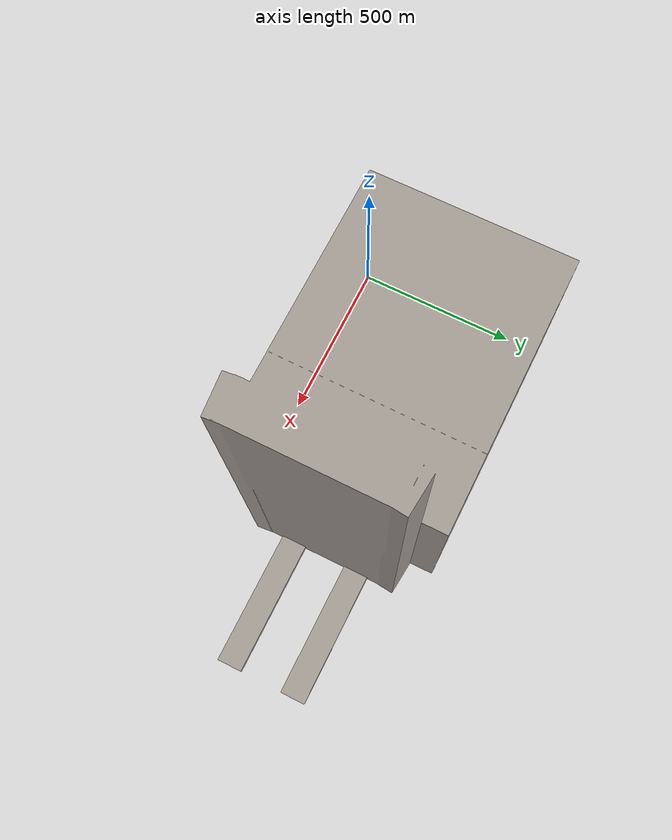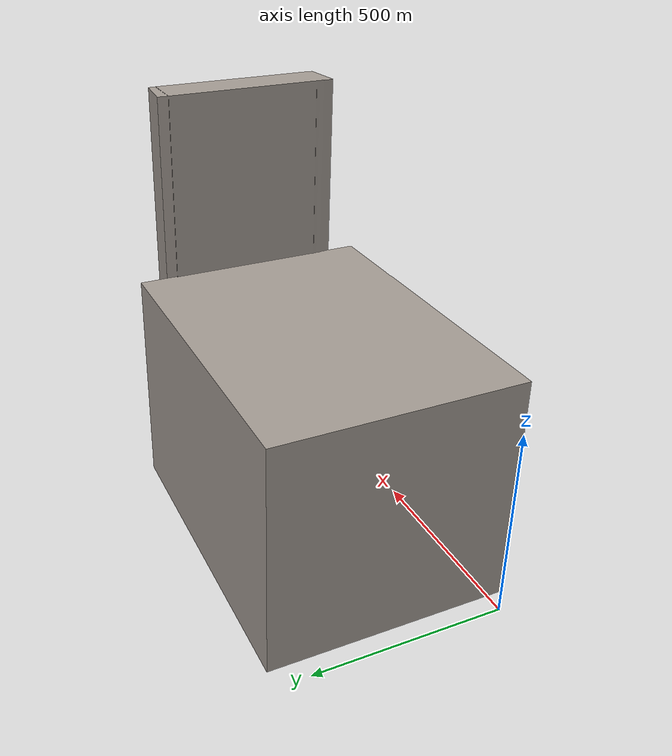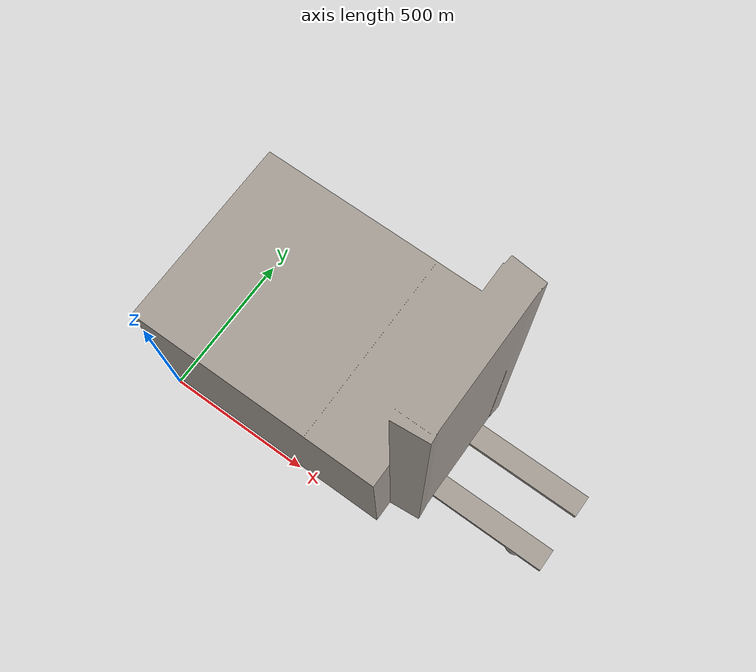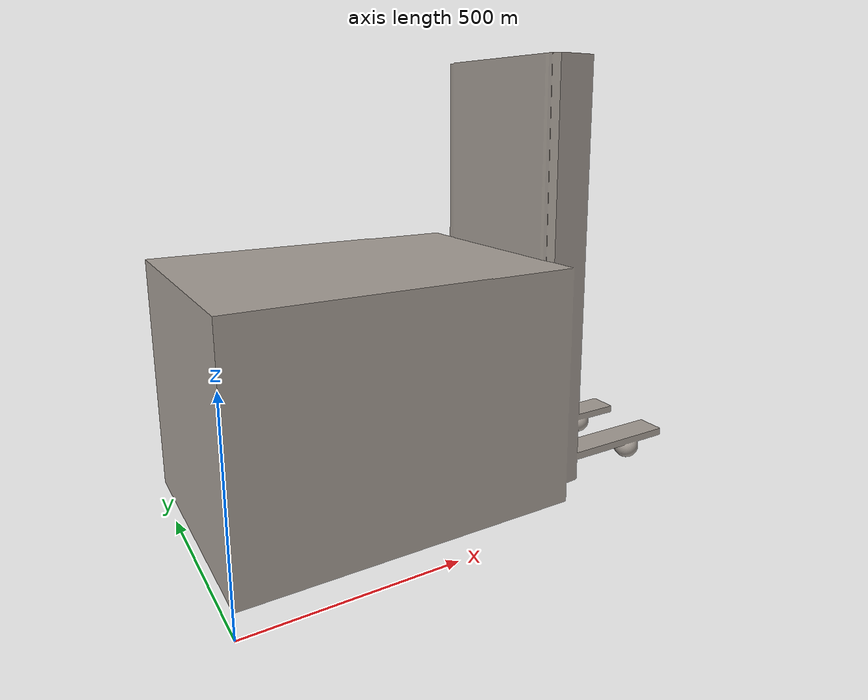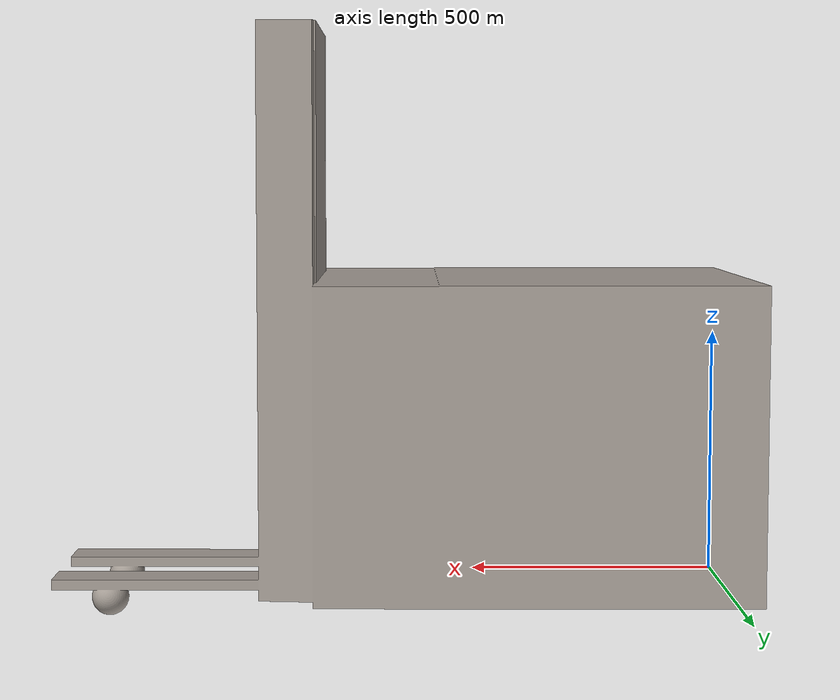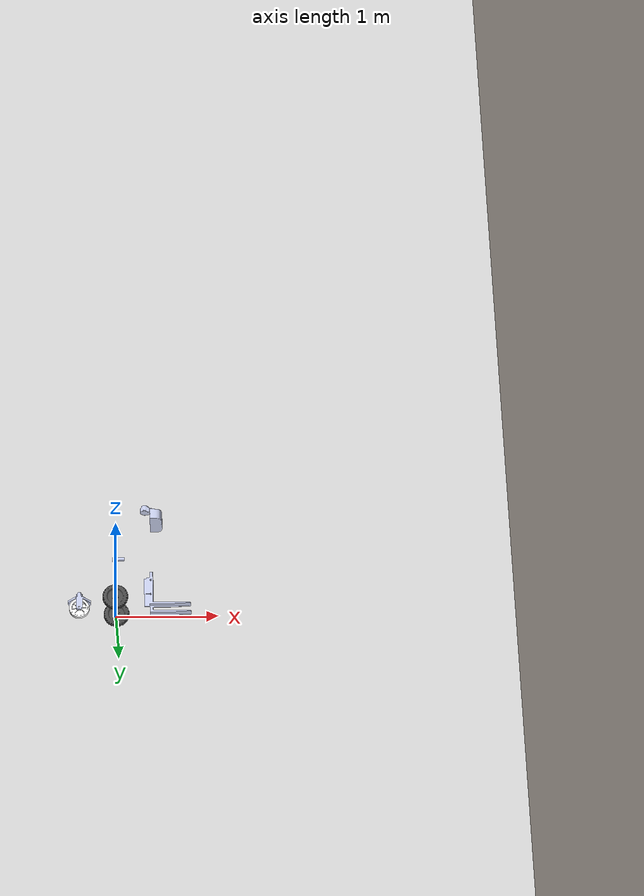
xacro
<?xml version="1.0" encoding="utf-8"?>

<robot xmlns:xacro="http://wiki.ros.org/xacro" name="forklift_simulation">

              <!-- _____________________LINKS___________________-->

<!-- Base Footprint Link -->
  <link name="base_footprint"/>

<!-- Chassis Link -->
  <link name="chassis">
    <inertial>
      <origin xyz="0.041308 0.00011665 0.21099" rpy="0 0 0"/>
      <mass value="79.173"/>
      <inertia ixx="1.7717" ixy="0.0070117" ixz="-0.21444" iyy="2.3738" iyz="0.11565" izz="1.7629"/>
    </inertial>
    <visual>
      <origin xyz="0 0 0" rpy="0 0 0"/>
      <geometry>
        <mesh filename="package://forklift_simulation/description/meshes/chassis.STL"/>
      </geometry>
      <material name="">
        <color rgba="0.65098 0.61961 0.58824 1"/>
      </material>
    </visual>
    <collision>
      <origin xyz="0 0 0" rpy="0 0 0"/>
      <geometry>
        <mesh filename="package://forklift_simulation/description/meshes/chassis_collision.STL"/>
      </geometry>
    </collision>
  </link>

<!-- Right Wheel Link -->
  <link name="right_wheel">
    <inertial>
      <origin xyz="-4.4082E-16 -4.7184E-15 0.0055" rpy="0 0 0"/>
      <mass value="1.8562"/>
      <inertia ixx="0.0085255" ixy="-1.3145E-18" ixz="-2.1561E-19" iyy="0.0085255" iyz="-2.4865E-18" izz="0.016487"/>
    </inertial>
    <visual>
      <origin xyz="0 0 0" rpy="0 0 0"/>
      <geometry>
        <mesh filename="package://forklift_simulation/description/meshes/right_wheel.STL"/>
      </geometry>
      <material name="">
        <color rgba="0.29804 0.29804 0.29804 1"/>
      </material>
    </visual>
    <collision>
      <origin xyz="0 0 0" rpy="0 0 0"/>
      <geometry>
        <mesh filename="package://forklift_simulation/description/meshes/right_wheel.STL"/>
      </geometry>
    </collision>
  </link>

<!-- Left Wheel Link -->
  <link name="left_wheel">
    <inertial>
      <origin xyz="-1.3079E-16 -6.4393E-15 -0.0055" rpy="0 0 0"/>
      <mass value="1.8562"/>
      <inertia ixx="0.0085255" ixy="3.3171E-19" ixz="-2.9592E-19" iyy="0.0085255" iyz="-8.0528E-19" izz="0.016487"/>
    </inertial>
    <visual>
      <origin xyz="0 0 0" rpy="0 0 0"/>
      <geometry>
        <mesh filename="package://forklift_simulation/description/meshes/left_wheel.STL"/>
      </geometry>
      <material name="">
        <color rgba="0.29804 0.29804 0.29804 1"/>
      </material>
    </visual>
    <collision>
      <origin xyz="0 0 0" rpy="0 0 0"/>
      <geometry>
        <mesh filename="package://forklift_simulation/description/meshes/left_wheel.STL"/>
      </geometry>
    </collision>
  </link>

<!-- Steering Link -->
  <link name="steering">
    <inertial>
      <origin xyz="-6.8292E-09 -4.407E-06 -0.056201" rpy="0 0 0"/>
      <mass value="0.33222"/>
      <inertia ixx="0.38" ixy="0.19" ixz="0.21" iyy="0.42" iyz="0.19" izz="0.4"/>
    </inertial>
    <visual>
      <origin xyz="0 0 0" rpy="0 0 0"/>
      <geometry>
        <mesh filename="package://forklift_simulation/description/meshes/steering.STL"/>
      </geometry>
      <material name="">
        <color rgba="0.79216 0.81961 0.93333 1"/>
      </material>
    </visual>
    <collision>
      <origin xyz="0 0 0" rpy="0 0 0"/>
      <geometry>
        <mesh filename="package://forklift_simulation/description/meshes/steering.STL"/>
      </geometry>
    </collision>
  </link>

<!-- Steering Wheel Link -->
  <link name="steering_wheel">
    <inertial>
      <origin xyz="0.3904 -0.11856 -0.038687" rpy="0 0 0"/>
      <mass value="1.17"/>
      <inertia ixx="0" ixy="0" ixz="0" iyy="0" iyz="0" izz="0.01"/>
    </inertial>
    <visual>
      <origin xyz="0 0 0" rpy="0 0 0"/>
      <geometry>
        <mesh filename="package://forklift_simulation/description/meshes/steering_wheel.STL"/>
      </geometry>
      <material name="">
        <color rgba="1 1 1 1"/>
      </material>
    </visual>
    <collision>
      <origin xyz="0 0 0" rpy="0 0 0"/>
      <geometry>
        <mesh filename="package://forklift_simulation/description/meshes/steering_wheel.STL"/>
      </geometry>
    </collision>
  </link>

<!-- Fork Link -->
  <link name="fork">
    <inertial>
      <origin xyz="-0.17561 -6.252E-06 0.1217" rpy="0 0 0"/>
      <mass value="2.3509"/>
      <inertia ixx="0.025264" ixy="1.3441E-06" ixz="0.0064063" iyy="0.028348" iyz="-1.2913E-06" izz="0.026676"/>
    </inertial>
    <visual>
      <origin xyz="0 0 0" rpy="0 0 0"/>
      <geometry>
        <mesh filename="package://forklift_simulation/description/meshes/fork.STL"/>
      </geometry>
      <material name="">
        <color rgba="0.79216 0.81961 0.93333 1"/>
      </material>
    </visual>
    <collision>
      <origin xyz="0 0 0" rpy="0 0 0"/>
      <geometry>
        <mesh filename="package://forklift_simulation/description/meshes/fork.STL"/>
      </geometry>
    </collision>
  </link>

<!-- Lidar Link -->
  <link name="lidar">
    <inertial>
      <origin xyz="0.0082941 1.218E-15 -0.011499" rpy="0 0 0"/>
      <mass value="0.1467"/>
      <inertia ixx="6.2272E-05" ixy="-5.4283E-21" ixz="1.8866E-05" iyy="0.00010967" iyz="-7.2985E-21" izz="0.00012568"/>
    </inertial>
    <visual>
      <origin xyz="0 0 0" rpy="0 0 0"/>
      <geometry>
        <mesh filename="package://forklift_simulation/description/meshes/lidar.STL"/>
      </geometry>
      <material name="">
        <color rgba="0.79216 0.81961 0.93333 1"/>
      </material>
    </visual>
    <collision>
      <origin xyz="0 0 0" rpy="0 0 0"/>
      <geometry>
        <mesh filename="package://forklift_simulation/description/meshes/lidar.STL"/>
      </geometry>
    </collision>
  </link>

<!-- Kinect Link -->
  <link name="kinect">
    <inertial>
      <origin xyz="-0.022778 -6.1618E-07 0.037485" rpy="0 0 0"/>
      <mass value="0.20967"/>
      <inertia ixx="0.0018872" ixy="4.0979E-09" ixz="4.8229E-19" iyy="0.00019443" iyz="-2.8119E-10" izz="0.0020804"/>
    </inertial>
    <visual>
      <origin xyz="0 0 0" rpy="0 0 0"/>
      <geometry>
        <mesh filename="package://forklift_simulation/description/meshes/kinect.STL"/>
      </geometry>
      <material name="">
        <color rgba="0.79216 0.81961 0.93333 1"/>
      </material>
    </visual>
    <collision>
      <origin xyz="0 0 0" rpy="0 0 0"/>
      <geometry>
        <mesh filename="package://forklift_simulation/description/meshes/kinect.STL"/>
      </geometry>
    </collision>
  </link>

<!-- IMU Link -->
  <link name="imu">
   <inertial>
    <origin xyz="0.021199 1.2181E-14 -0.015895" rpy="0 0 0"/>
    <mass value="0.01"/>
    <inertia
      ixx="1.7987E-05"
      ixy="-2.0959E-21"
      ixz="-4.986E-21"
      iyy="0.00014163"
      iyz="7.3468E-37"
      izz="0.00014059" />
   </inertial>
   <visual>
    <origin xyz="0 0 0" rpy="0 0 0" />
    <geometry>
      <mesh filename="package://forklift_simulation/description/meshes/imu.STL" />
    </geometry>
    <material name="">
      <color rgba="0.79216 0.81961 0.93333 1" />
    </material>
   </visual>
   <collision>
    <origin xyz="0 0 0" rpy="0 0 0" />
    <geometry>
      <mesh filename="package://forklift_simulation/description/meshes/imu.STL" />
    </geometry>
   </collision>
  </link>

            <!-- ______________________Joints________________________-->

<!-- Chassis to Base Footprint Joint -->
  <joint name="chassis_base_footprint" type="fixed">
    <origin xyz="0 0 0.125" rpy="0 0 0"/>
    <parent link="base_footprint"/>
    <child link="chassis"/>
    <axis xyz="0 0 0"/>
  </joint>

<!-- Right Wheel Joint -->
  <joint name="right_wheel_joint" type="continuous">
    <origin xyz="0 -0.22 0" rpy="-1.5708 0 0"/>
    <parent link="chassis"/>
    <child link="right_wheel"/>
    <axis xyz="0 0 1"/>
  </joint>

<!-- Left Wheel Joint -->
  <joint name="left_wheel_joint" type="continuous">
    <origin xyz="0 0.22 0" rpy="-1.57079632679489 0 0"/>
    <parent link="chassis"/>
    <child link="left_wheel"/>
    <axis xyz="0 0 1"/>
  </joint>

<!-- Steering Joint -->
  <joint name="steering_joint" type="revolute">
    <origin xyz="-0.358 0 0.10508" rpy="0 0 0"/>
    <parent link="chassis"/>
    <child link="steering"/>
    <axis xyz="0 0 1"/>
    <limit lower="-1.5" upper="1.5" effort="3" velocity="10"/>
  </joint>

<!-- Steering Wheel Joint -->
 <joint name="steering_wheel_joint" type="continuous">
  <origin xyz="0 0 -0.13" rpy="-1.5707963267949 0 0"/>
  <parent link="steering"/>
  <child link="steering_wheel"/>
  <axis xyz="0 0 1"/>
 </joint>

<!-- Fork Joint -->
  <joint name="fork_joint" type="prismatic">
    <origin xyz="0.551 -0.0095001 -0.031" rpy="0 0 0"/>
    <parent link="chassis"/>
    <child link="fork"/>
    <axis xyz="0 0 1"/>
    <limit lower="0" upper="0.3" effort="0" velocity="0"/>
  </joint>

<!-- Lidar Joint -->
  <joint name="lidar_joint" type="fixed">
    <origin xyz="0.280500000000007 0 1.03720000000023" rpy="0 0 0"/>
    <parent link="chassis"/>
    <child link="lidar"/>
    <axis xyz="0 0 0"/>
  </joint>

<!-- IMU Joint -->
  <joint name="imu_joint" type="fixed">
    <origin xyz="0 0 0.508" rpy="0 0 0" />
    <parent link="chassis" />
    <child link="imu" />
  </joint>

<!-- Kinect Joint -->
  <joint name="kinect_joint" type="fixed">
    <origin xyz="0.40675 0.00020009 0.90951" rpy="0 0 0"/>
    <parent link="chassis"/>
    <child link="kinect"/>
    <axis xyz="0 0 0"/>
  </joint>

</robot>
